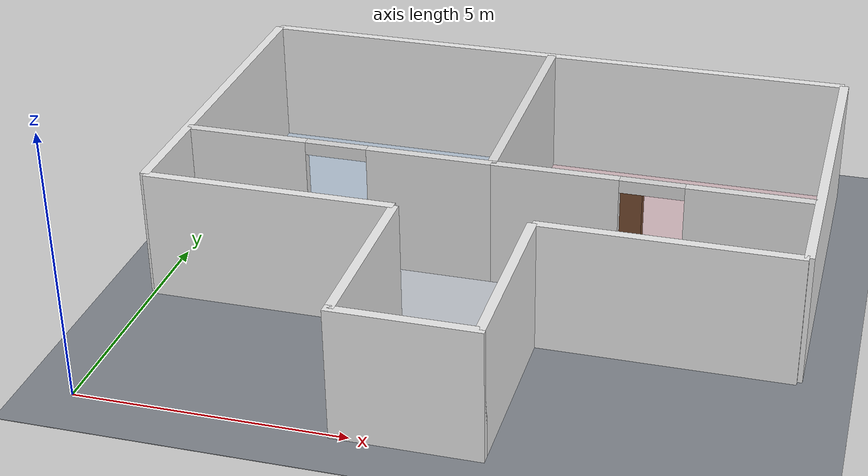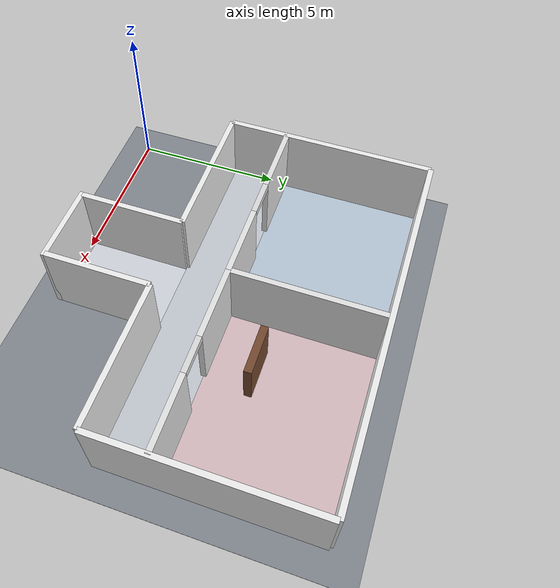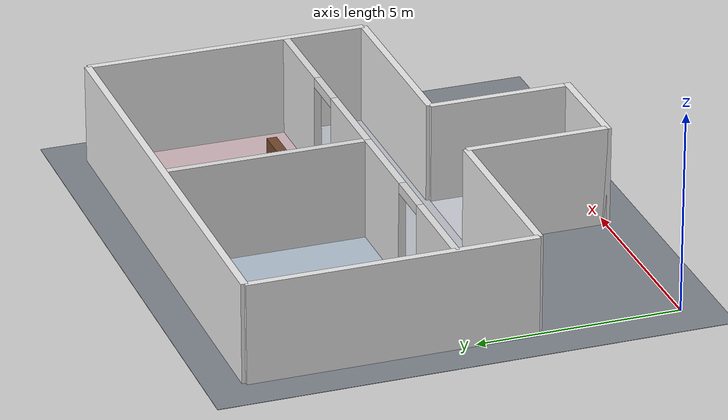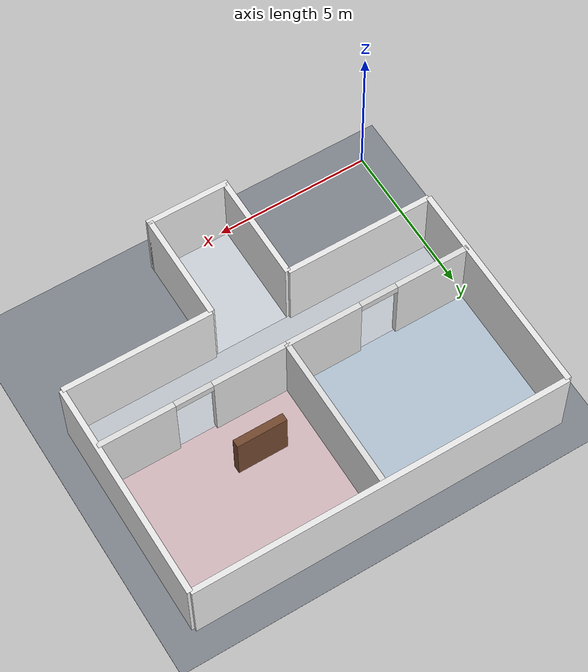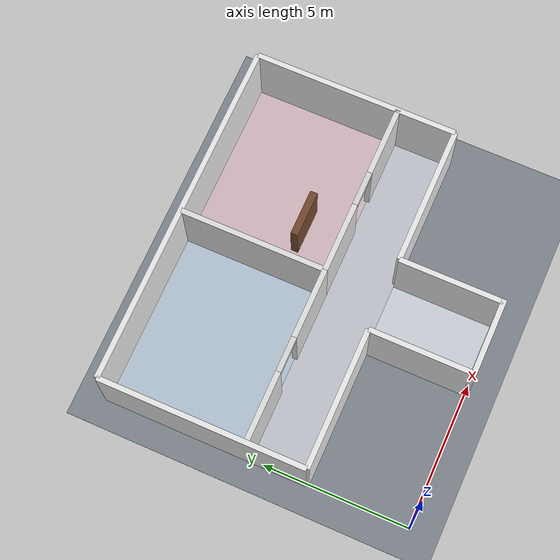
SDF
<sdf version="1.7">
 <world name="t_junction_office">
  <gravity>0 0 -9.8</gravity>
  <magnetic_field>6e-06 2.3e-05 -4.2e-05</magnetic_field>
  <physics type="ode">
   <max_step_size>0.001</max_step_size>
   <real_time_factor>1</real_time_factor>
   <real_time_update_rate>1000</real_time_update_rate>
  </physics>
  <scene>
   <ambient>0.45 0.45 0.45 1</ambient>
   <background>0.72 0.75 0.80 1</background>
   <shadows>1</shadows>
  </scene>
  <model name="ground_plane">
   <static>true</static>
   <link name="link">
    <collision name="collision"><geometry><box><size>60.000 60.000 0.010</size></box></geometry></collision>
    <visual name="visual">
     <geometry><box><size>60.000 60.000 0.010</size></box></geometry>
     <material>
      <ambient>0.500 0.520 0.550 1.000</ambient>
      <diffuse>0.500 0.520 0.550 1.000</diffuse>
      <specular>0.15 0.15 0.15 1</specular>
     </material>
    </visual>
   </link>
  </model>
  <light name="sun" type="directional">
   <pose>6.000 5.000 20.000 0 0 0.000000</pose>
   <diffuse>0.85 0.85 0.85 1</diffuse>
   <specular>0.20 0.20 0.20 1</specular>
   <direction>-0.35 0.20 -0.90</direction>
   <attenuation>
    <range>50</range>
    <constant>0.8</constant>
    <linear>0.01</linear>
    <quadratic>0.001</quadratic>
   </attenuation>
  </light>
  <model name="t_junction_structure">
   <static>true</static>
   <link name="floor_foyer">
    <pose>6.000 1.750 0.003 0 0 0.000000</pose>
    <visual name="floor_foyer_visual">
     <geometry><box><size>2.500 3.500 0.005</size></box></geometry>
     <material>
      <ambient>0.800 0.820 0.850 1.000</ambient>
      <diffuse>0.800 0.820 0.850 1.000</diffuse>
      <specular>0.15 0.15 0.15 1</specular>
     </material>
    </visual>
   </link>
   <link name="floor_cross_hall">
    <pose>6.000 4.500 0.003 0 0 0.000000</pose>
    <visual name="floor_cross_hall_visual">
     <geometry><box><size>12.000 2.000 0.005</size></box></geometry>
     <material>
      <ambient>0.750 0.770 0.800 1.000</ambient>
      <diffuse>0.750 0.770 0.800 1.000</diffuse>
      <specular>0.15 0.15 0.15 1</specular>
     </material>
    </visual>
   </link>
   <link name="floor_room_a">
    <pose>3.000 8.000 0.003 0 0 0.000000</pose>
    <visual name="floor_room_a_visual">
     <geometry><box><size>6.000 5.000 0.005</size></box></geometry>
     <material>
      <ambient>0.700 0.760 0.820 1.000</ambient>
      <diffuse>0.700 0.760 0.820 1.000</diffuse>
      <specular>0.15 0.15 0.15 1</specular>
     </material>
    </visual>
   </link>
   <link name="floor_room_b">
    <pose>9.000 8.000 0.003 0 0 0.000000</pose>
    <visual name="floor_room_b_visual">
     <geometry><box><size>6.000 5.000 0.005</size></box></geometry>
     <material>
      <ambient>0.820 0.720 0.740 1.000</ambient>
      <diffuse>0.820 0.720 0.740 1.000</diffuse>
      <specular>0.15 0.15 0.15 1</specular>
     </material>
    </visual>
   </link>
   <link name="wall_outer_north">
    <pose>6.000 10.500 1.250 0 0 0.000000</pose>
    <collision name="wall_outer_north_collision">
     <geometry><box><size>12.000 0.180 2.500</size></box></geometry>
    </collision>
    <visual name="wall_outer_north_visual">
     <geometry><box><size>12.000 0.180 2.500</size></box></geometry>
     <material>
      <ambient>0.920 0.920 0.920 1.000</ambient>
      <diffuse>0.920 0.920 0.920 1.000</diffuse>
      <specular>0.15 0.15 0.15 1</specular>
     </material>
    </visual>
   </link>
   <link name="wall_outer_west">
    <pose>0.000 7.000 1.250 0 0 0.000000</pose>
    <collision name="wall_outer_west_collision">
     <geometry><box><size>0.180 7.000 2.500</size></box></geometry>
    </collision>
    <visual name="wall_outer_west_visual">
     <geometry><box><size>0.180 7.000 2.500</size></box></geometry>
     <material>
      <ambient>0.920 0.920 0.920 1.000</ambient>
      <diffuse>0.920 0.920 0.920 1.000</diffuse>
      <specular>0.15 0.15 0.15 1</specular>
     </material>
    </visual>
   </link>
   <link name="wall_outer_east">
    <pose>12.000 7.000 1.250 0 0 0.000000</pose>
    <collision name="wall_outer_east_collision">
     <geometry><box><size>0.180 7.000 2.500</size></box></geometry>
    </collision>
    <visual name="wall_outer_east_visual">
     <geometry><box><size>0.180 7.000 2.500</size></box></geometry>
     <material>
      <ambient>0.920 0.920 0.920 1.000</ambient>
      <diffuse>0.920 0.920 0.920 1.000</diffuse>
      <specular>0.15 0.15 0.15 1</specular>
     </material>
    </visual>
   </link>
   <link name="wall_hall_south_left">
    <pose>2.375 3.500 1.250 0 0 0.000000</pose>
    <collision name="wall_hall_south_left_collision">
     <geometry><box><size>4.750 0.180 2.500</size></box></geometry>
    </collision>
    <visual name="wall_hall_south_left_visual">
     <geometry><box><size>4.750 0.180 2.500</size></box></geometry>
     <material>
      <ambient>0.920 0.920 0.920 1.000</ambient>
      <diffuse>0.920 0.920 0.920 1.000</diffuse>
      <specular>0.15 0.15 0.15 1</specular>
     </material>
    </visual>
   </link>
   <link name="wall_hall_south_right">
    <pose>9.625 3.500 1.250 0 0 0.000000</pose>
    <collision name="wall_hall_south_right_collision">
     <geometry><box><size>4.750 0.180 2.500</size></box></geometry>
    </collision>
    <visual name="wall_hall_south_right_visual">
     <geometry><box><size>4.750 0.180 2.500</size></box></geometry>
     <material>
      <ambient>0.920 0.920 0.920 1.000</ambient>
      <diffuse>0.920 0.920 0.920 1.000</diffuse>
      <specular>0.15 0.15 0.15 1</specular>
     </material>
    </visual>
   </link>
   <link name="wall_stem_west">
    <pose>4.750 1.750 1.250 0 0 0.000000</pose>
    <collision name="wall_stem_west_collision">
     <geometry><box><size>0.180 3.500 2.500</size></box></geometry>
    </collision>
    <visual name="wall_stem_west_visual">
     <geometry><box><size>0.180 3.500 2.500</size></box></geometry>
     <material>
      <ambient>0.920 0.920 0.920 1.000</ambient>
      <diffuse>0.920 0.920 0.920 1.000</diffuse>
      <specular>0.15 0.15 0.15 1</specular>
     </material>
    </visual>
   </link>
   <link name="wall_stem_east">
    <pose>7.250 1.750 1.250 0 0 0.000000</pose>
    <collision name="wall_stem_east_collision">
     <geometry><box><size>0.180 3.500 2.500</size></box></geometry>
    </collision>
    <visual name="wall_stem_east_visual">
     <geometry><box><size>0.180 3.500 2.500</size></box></geometry>
     <material>
      <ambient>0.920 0.920 0.920 1.000</ambient>
      <diffuse>0.920 0.920 0.920 1.000</diffuse>
      <specular>0.15 0.15 0.15 1</specular>
     </material>
    </visual>
   </link>
   <link name="wall_stem_south">
    <pose>6.000 0.000 1.250 0 0 0.000000</pose>
    <collision name="wall_stem_south_collision">
     <geometry><box><size>2.680 0.180 2.500</size></box></geometry>
    </collision>
    <visual name="wall_stem_south_visual">
     <geometry><box><size>2.680 0.180 2.500</size></box></geometry>
     <material>
      <ambient>0.920 0.920 0.920 1.000</ambient>
      <diffuse>0.920 0.920 0.920 1.000</diffuse>
      <specular>0.15 0.15 0.15 1</specular>
     </material>
    </visual>
   </link>
   <link name="wall_partition_ab">
    <pose>6.000 8.000 1.250 0 0 0.000000</pose>
    <collision name="wall_partition_ab_collision">
     <geometry><box><size>0.180 5.000 2.500</size></box></geometry>
    </collision>
    <visual name="wall_partition_ab_visual">
     <geometry><box><size>0.180 5.000 2.500</size></box></geometry>
     <material>
      <ambient>0.880 0.880 0.880 1.000</ambient>
      <diffuse>0.880 0.880 0.880 1.000</diffuse>
      <specular>0.15 0.15 0.15 1</specular>
     </material>
    </visual>
   </link>
   <link name="wall_room_a_south_w">
    <pose>1.200 5.500 1.250 0 0 0.000000</pose>
    <collision name="wall_room_a_south_w_collision">
     <geometry><box><size>2.400 0.180 2.500</size></box></geometry>
    </collision>
    <visual name="wall_room_a_south_w_visual">
     <geometry><box><size>2.400 0.180 2.500</size></box></geometry>
     <material>
      <ambient>0.880 0.880 0.880 1.000</ambient>
      <diffuse>0.880 0.880 0.880 1.000</diffuse>
      <specular>0.15 0.15 0.15 1</specular>
     </material>
    </visual>
   </link>
   <link name="wall_room_a_south_e">
    <pose>4.800 5.500 1.250 0 0 0.000000</pose>
    <collision name="wall_room_a_south_e_collision">
     <geometry><box><size>2.400 0.180 2.500</size></box></geometry>
    </collision>
    <visual name="wall_room_a_south_e_visual">
     <geometry><box><size>2.400 0.180 2.500</size></box></geometry>
     <material>
      <ambient>0.880 0.880 0.880 1.000</ambient>
      <diffuse>0.880 0.880 0.880 1.000</diffuse>
      <specular>0.15 0.15 0.15 1</specular>
     </material>
    </visual>
   </link>
   <link name="lintel_door_a">
    <pose>3.000 5.500 2.375 0 0 0.000000</pose>
    <visual name="lintel_door_a_visual">
     <geometry><box><size>1.200 0.180 0.250</size></box></geometry>
     <material>
      <ambient>0.850 0.850 0.850 1.000</ambient>
      <diffuse>0.850 0.850 0.850 1.000</diffuse>
      <specular>0.15 0.15 0.15 1</specular>
     </material>
    </visual>
   </link>
   <link name="wall_room_b_south_w">
    <pose>7.200 5.500 1.250 0 0 0.000000</pose>
    <collision name="wall_room_b_south_w_collision">
     <geometry><box><size>2.400 0.180 2.500</size></box></geometry>
    </collision>
    <visual name="wall_room_b_south_w_visual">
     <geometry><box><size>2.400 0.180 2.500</size></box></geometry>
     <material>
      <ambient>0.880 0.880 0.880 1.000</ambient>
      <diffuse>0.880 0.880 0.880 1.000</diffuse>
      <specular>0.15 0.15 0.15 1</specular>
     </material>
    </visual>
   </link>
   <link name="wall_room_b_south_e">
    <pose>10.800 5.500 1.250 0 0 0.000000</pose>
    <collision name="wall_room_b_south_e_collision">
     <geometry><box><size>2.400 0.180 2.500</size></box></geometry>
    </collision>
    <visual name="wall_room_b_south_e_visual">
     <geometry><box><size>2.400 0.180 2.500</size></box></geometry>
     <material>
      <ambient>0.880 0.880 0.880 1.000</ambient>
      <diffuse>0.880 0.880 0.880 1.000</diffuse>
      <specular>0.15 0.15 0.15 1</specular>
     </material>
    </visual>
   </link>
   <link name="lintel_door_b">
    <pose>9.000 5.500 2.375 0 0 0.000000</pose>
    <visual name="lintel_door_b_visual">
     <geometry><box><size>1.200 0.180 0.250</size></box></geometry>
     <material>
      <ambient>0.850 0.850 0.850 1.000</ambient>
      <diffuse>0.850 0.850 0.850 1.000</diffuse>
      <specular>0.15 0.15 0.15 1</specular>
     </material>
    </visual>
   </link>
   <link name="target_room_occluder">
    <pose>7.800 7.000 0.800 0 0 0.000000</pose>
    <collision name="target_room_occluder_collision">
     <geometry><box><size>1.600 0.250 1.600</size></box></geometry>
    </collision>
    <visual name="target_room_occluder_visual">
     <geometry><box><size>1.600 0.250 1.600</size></box></geometry>
     <material>
      <ambient>0.450 0.280 0.180 1.000</ambient>
      <diffuse>0.450 0.280 0.180 1.000</diffuse>
      <specular>0.15 0.15 0.15 1</specular>
     </material>
    </visual>
   </link>
  </model>
 </world>
</sdf>
